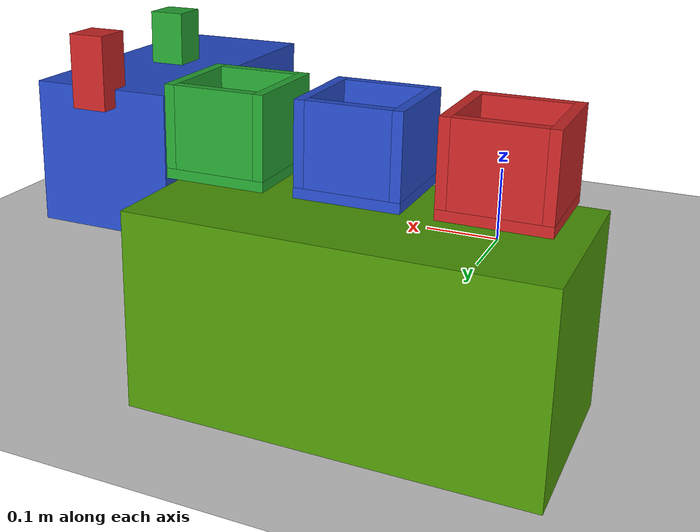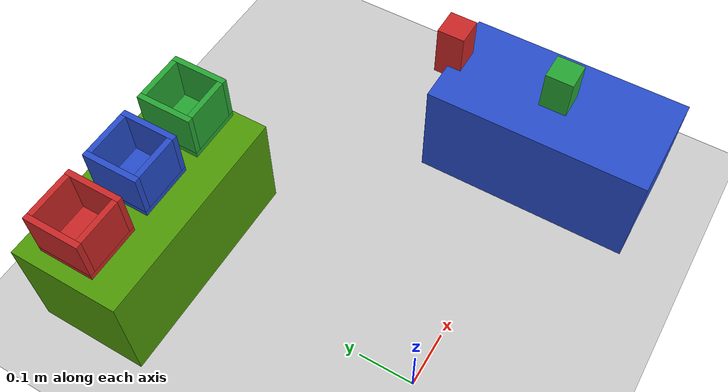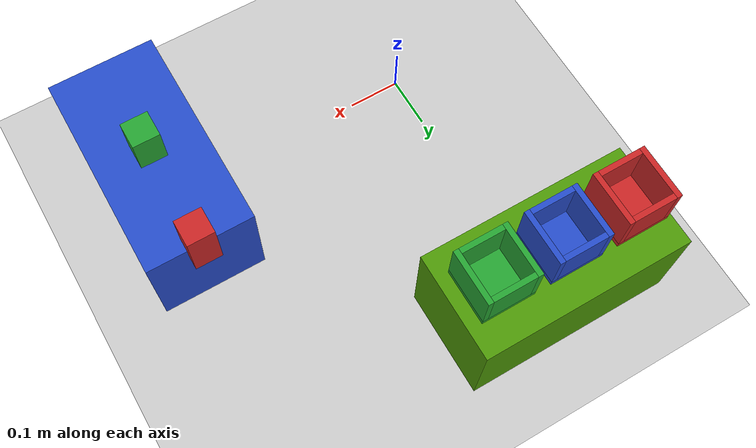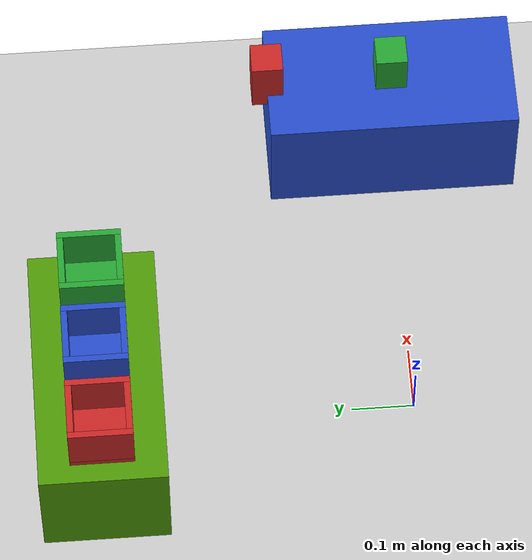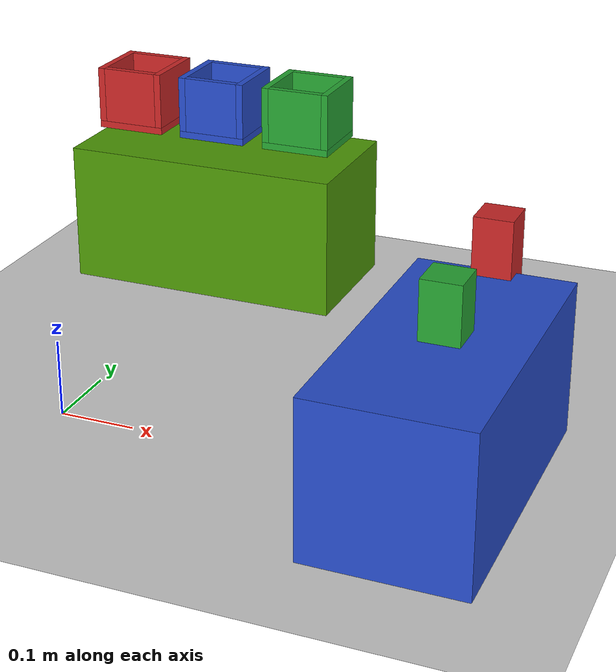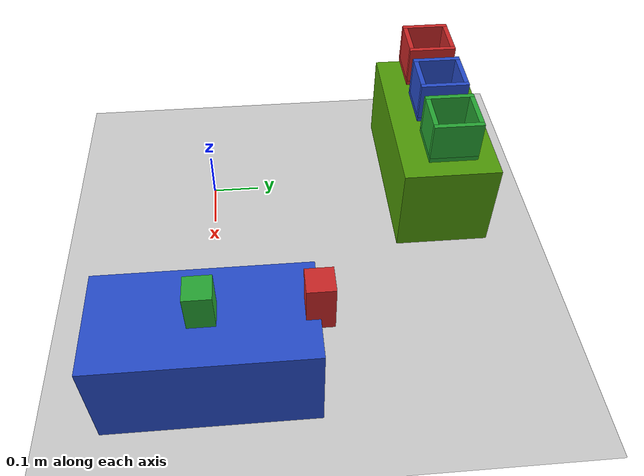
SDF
<sdf version="1.7">
 <world name="default">
  <light name="sun" type="directional">
   <pose>0 0 10 0 -0 0</pose>
   <diffuse>0.8 0.8 0.8 1</diffuse>
   <specular>0.2 0.2 0.2 1</specular>
   <attenuation>
    <range>1000</range>
    <constant>0.9</constant>
    <linear>0.01</linear>
    <quadratic>0.001</quadratic>
   </attenuation>
   <direction>-0.5 0.1 -0.9</direction>
   <spot><inner_angle>0</inner_angle><outer_angle>0</outer_angle><falloff>0</falloff></spot>
  </light>
  <model name="ground_plane">
   <static>1</static>
   <link name="link">
    <collision name="collision">
     <geometry><plane><normal>0 0 1</normal><size>100 100</size></plane></geometry>
     <surface>
      <contact><collide_bitmask>65535</collide_bitmask></contact>
      <friction><ode><mu>100</mu><mu2>50</mu2></ode></friction>
     </surface>
    </collision>
    <visual name="visual">
     <cast_shadows>0</cast_shadows>
     <geometry><plane><normal>0 0 1</normal><size>100 100</size></plane></geometry>
     <material>
      <script><uri>file://media/materials/scripts/gazebo.material</uri><name>Gazebo/Grey</name></script>
     </material>
    </visual>
    <self_collide>1</self_collide>
   </link>
  </model>
  <gravity>0 0 -9.8</gravity>
  <magnetic_field>6e-06 2.3e-05 -4.2e-05</magnetic_field>
  <atmosphere type="adiabatic"/>
  <physics type="ode">
   <max_step_size>0.001</max_step_size>
   <real_time_factor>1</real_time_factor>
   <real_time_update_rate>1000</real_time_update_rate>
  </physics>
  <scene><ambient>0.4 0.4 0.4 1</ambient><background>0.7 0.7 0.7 1</background><shadows>1</shadows></scene>
  <spherical_coordinates>
   <surface_model>EARTH_WGS84</surface_model>
   <latitude_deg>0</latitude_deg>
   <longitude_deg>0</longitude_deg>
   <elevation>0</elevation>
   <heading_deg>0</heading_deg>
  </spherical_coordinates>
  <model name="table">
   <link name="link_2">
    <inertial>
     <mass>1</mass>
     <inertia>
      <ixx>0.166667</ixx>
      <ixy>0</ixy>
      <ixz>0</ixz>
      <iyy>0.166667</iyy>
      <iyz>0</iyz>
      <izz>0.166667</izz>
     </inertia>
    </inertial>
    <self_collide>1</self_collide>
    <visual name="visual">
     <geometry><box><size>0.2 0.4 0.2</size></box></geometry>
     <material>
      <lighting>1</lighting>
      <script><uri>file://media/materials/scripts/gazebo.material</uri><name>Gazebo/Blue</name></script>
      <shader type="pixel"><normal_map>__default__</normal_map></shader>
      <ambient>0.306 0.604 0.024 1</ambient>
      <diffuse>0.7 0.7 0.7 1</diffuse>
      <specular>0.01 0.01 0.01 1</specular>
      <emissive>0 0 0 1</emissive>
     </material>
    </visual>
    <collision name="collision">
     <geometry><box><size>0.2 0.4 0.2</size></box></geometry>
     <surface>
      <friction>
       <ode><mu>1</mu><mu2>1</mu2><fdir1>0 0 0</fdir1><slip1>0</slip1><slip2>0</slip2></ode>
       <torsional>
        <coefficient>1</coefficient>
        <patch_radius>0</patch_radius>
        <surface_radius>0</surface_radius>
        <use_patch_radius>1</use_patch_radius>
        <ode><slip>0</slip></ode>
       </torsional>
      </friction>
      <bounce><restitution_coefficient>0</restitution_coefficient><threshold>1e+06</threshold></bounce>
      <contact>
       <collide_without_contact>0</collide_without_contact>
       <collide_without_contact_bitmask>1</collide_without_contact_bitmask>
       <collide_bitmask>1</collide_bitmask>
       <ode>
        <soft_cfm>0</soft_cfm>
        <soft_erp>0.2</soft_erp>
        <kp>1e+13</kp>
        <kd>1</kd>
        <max_vel>0.01</max_vel>
        <min_depth>0</min_depth>
       </ode>
       <bullet>
        <split_impulse>1</split_impulse>
        <split_impulse_penetration_threshold>-0.01</split_impulse_penetration_threshold>
        <soft_cfm>0</soft_cfm>
        <soft_erp>0.2</soft_erp>
        <kp>1e+13</kp>
        <kd>1</kd>
       </bullet>
      </contact>
     </surface>
    </collision>
   </link>
   <static>0</static>
   <pose>0.5 0 0.1 0 -0 0</pose>
  </model>
  <model name="red block">
   <link name="link_0">
    <inertial>
     <mass>0.1</mass>
     <inertia>
      <ixx>0.00416667</ixx>
      <ixy>0</ixy>
      <ixz>0</ixz>
      <iyy>0.00416667</iyy>
      <iyz>0</iyz>
      <izz>0.00416667</izz>
     </inertia>
    </inertial>
    <self_collide>1</self_collide>
    <visual name="visual">
     <geometry><box><size>0.05 0.05 0.1</size></box></geometry>
     <material>
      <lighting>1</lighting>
      <script><uri>file://media/materials/scripts/gazebo.material</uri><name>Gazebo/Red</name></script>
      <shader type="pixel"><normal_map>__default__</normal_map></shader>
      <ambient>1 0 0 1</ambient>
      <diffuse>0.7 0.7 0.7 1</diffuse>
      <specular>0.01 0.01 0.01 1</specular>
      <emissive>0 0 0 1</emissive>
     </material>
    </visual>
    <collision name="collision">
     <geometry><box><size>0.05 0.05 0.1</size></box></geometry>
     <surface>
      <friction>
       <ode><mu>100</mu><mu2>100</mu2><fdir1>0 0 0</fdir1><slip1>0</slip1><slip2>0</slip2></ode>
       <torsional>
        <coefficient>1</coefficient>
        <patch_radius>0</patch_radius>
        <surface_radius>0</surface_radius>
        <use_patch_radius>1</use_patch_radius>
        <ode><slip>0</slip></ode>
       </torsional>
      </friction>
      <bounce><restitution_coefficient>0</restitution_coefficient><threshold>1e+06</threshold></bounce>
      <contact><ode><soft_cfm>1e-6</soft_cfm><soft_erp>0.2</soft_erp><kp>1e6</kp><kd>1.0</kd></ode></contact>
     </surface>
    </collision>
   </link>
   <static>0</static>
   <pose>0.5 0.2 0.2251 0 -0 0</pose>
  </model>
  <model name="green block">
   <link name="link_0">
    <inertial>
     <mass>0.1</mass>
     <inertia>
      <ixx>0.00416667</ixx>
      <ixy>0</ixy>
      <ixz>0</ixz>
      <iyy>0.00416667</iyy>
      <iyz>0</iyz>
      <izz>0.00416667</izz>
     </inertia>
    </inertial>
    <self_collide>1</self_collide>
    <visual name="visual">
     <geometry><box><size>0.05 0.05 0.1</size></box></geometry>
     <material>
      <lighting>1</lighting>
      <script><uri>file://media/materials/scripts/gazebo.material</uri><name>Gazebo/Green</name></script>
      <shader type="pixel"><normal_map>__default__</normal_map></shader>
      <ambient>0 1 0 1</ambient>
      <diffuse>0 1 0 1</diffuse>
      <specular>0.01 0.01 0.01 1</specular>
      <emissive>0 0 0 1</emissive>
     </material>
    </visual>
    <collision name="collision">
     <geometry><box><size>0.05 0.05 0.1</size></box></geometry>
     <surface>
      <friction>
       <ode><mu>100</mu><mu2>100</mu2><fdir1>0 0 0</fdir1><slip1>0</slip1><slip2>0</slip2></ode>
       <torsional>
        <coefficient>1</coefficient>
        <patch_radius>0</patch_radius>
        <surface_radius>0</surface_radius>
        <use_patch_radius>1</use_patch_radius>
        <ode><slip>0</slip></ode>
       </torsional>
      </friction>
      <bounce><restitution_coefficient>0</restitution_coefficient><threshold>1e+06</threshold></bounce>
      <contact><ode><soft_cfm>1e-6</soft_cfm><soft_erp>0.2</soft_erp><kp>1e6</kp><kd>1.0</kd></ode></contact>
     </surface>
    </collision>
   </link>
   <static>0</static>
   <pose>0.5 0 0.2251 0 -0 0</pose>
  </model>
  <model name="blue block">
   <link name="link_0">
    <inertial>
     <mass>0.1</mass>
     <inertia>
      <ixx>0.00416667</ixx>
      <ixy>0</ixy>
      <ixz>0</ixz>
      <iyy>0.00416667</iyy>
      <iyz>0</iyz>
      <izz>0.00416667</izz>
     </inertia>
    </inertial>
    <self_collide>1</self_collide>
    <visual name="visual">
     <geometry><box><size>0.05 0.05 0.1</size></box></geometry>
     <material>
      <lighting>1</lighting>
      <script><uri>file://media/materials/scripts/gazebo.material</uri><name>Gazebo/Green</name></script>
      <shader type="pixel"><normal_map>__default__</normal_map></shader>
      <ambient>0 0 1 1</ambient>
      <diffuse>0 0 1 0.7</diffuse>
      <specular>0.01 0.01 0.01 1</specular>
      <emissive>0 0 0 1</emissive>
     </material>
    </visual>
    <collision name="collision">
     <geometry><box><size>0.05 0.05 0.1</size></box></geometry>
     <surface>
      <friction>
       <ode><mu>100</mu><mu2>100</mu2><fdir1>0 0 0</fdir1><slip1>0</slip1><slip2>0</slip2></ode>
       <torsional>
        <coefficient>1</coefficient>
        <patch_radius>0</patch_radius>
        <surface_radius>0</surface_radius>
        <use_patch_radius>1</use_patch_radius>
        <ode><slip>0</slip></ode>
       </torsional>
      </friction>
      <bounce><restitution_coefficient>0</restitution_coefficient><threshold>1e+06</threshold></bounce>
      <contact><ode><soft_cfm>1e-6</soft_cfm><soft_erp>0.2</soft_erp><kp>1e6</kp><kd>1.0</kd></ode></contact>
     </surface>
    </collision>
   </link>
   <static>0</static>
   <pose>0.5 0.2 0.2251 0 -0 0</pose>
  </model>
  <model name="table_0">
   <link name="link_2">
    <inertial>
     <mass>1</mass>
     <inertia>
      <ixx>0.166667</ixx>
      <ixy>0</ixy>
      <ixz>0</ixz>
      <iyy>0.166667</iyy>
      <iyz>0</iyz>
      <izz>0.166667</izz>
     </inertia>
    </inertial>
    <self_collide>1</self_collide>
    <visual name="visual">
     <geometry><box><size>0.2 0.4 0.2</size></box></geometry>
     <material>
      <lighting>1</lighting>
      <script><uri>file://media/materials/scripts/gazebo.material</uri><name>Gazebo/Grey</name></script>
      <shader type="pixel"><normal_map>__default__</normal_map></shader>
      <ambient>0.306 0.604 0.024 1</ambient>
      <diffuse>0.7 0.7 0.7 1</diffuse>
      <specular>0.01 0.01 0.01 1</specular>
      <emissive>0 0 0 1</emissive>
     </material>
    </visual>
    <collision name="collision">
     <geometry><box><size>0.2 0.4 0.2</size></box></geometry>
     <surface>
      <friction>
       <ode><mu>1</mu><mu2>1</mu2><fdir1>0 0 0</fdir1><slip1>0</slip1><slip2>0</slip2></ode>
       <torsional>
        <coefficient>1</coefficient>
        <patch_radius>0</patch_radius>
        <surface_radius>0</surface_radius>
        <use_patch_radius>1</use_patch_radius>
        <ode><slip>0</slip></ode>
       </torsional>
      </friction>
      <bounce><restitution_coefficient>0</restitution_coefficient><threshold>1e+06</threshold></bounce>
      <contact>
       <collide_without_contact>0</collide_without_contact>
       <collide_without_contact_bitmask>1</collide_without_contact_bitmask>
       <collide_bitmask>1</collide_bitmask>
       <ode>
        <soft_cfm>0</soft_cfm>
        <soft_erp>0.2</soft_erp>
        <kp>1e+13</kp>
        <kd>1</kd>
        <max_vel>0.01</max_vel>
        <min_depth>0</min_depth>
       </ode>
       <bullet>
        <split_impulse>1</split_impulse>
        <split_impulse_penetration_threshold>-0.01</split_impulse_penetration_threshold>
        <soft_cfm>0</soft_cfm>
        <soft_erp>0.2</soft_erp>
        <kp>1e+13</kp>
        <kd>1</kd>
       </bullet>
      </contact>
     </surface>
    </collision>
   </link>
   <static>0</static>
   <pose>0 0.5 0.1 0 -0 1.57</pose>
  </model>
  <model name="bin_blue">
   <pose>0 0.5 0.2251 0 -0 0</pose>
   <static>false</static>
   <link name="link_0">
    <visual name="visual">
     <geometry><box><size>0.1 0.1 0.01</size></box></geometry>
     <material>
      <script><uri>file://media/materials/scripts/gazebo.material</uri><name>Gazebo/Blue</name></script>
     </material>
    </visual>
    <collision name="collision"><geometry><box><size>0.1 0.1 0.01</size></box></geometry></collision>
   </link>
   <link name="link_1">
    <pose>-0.045 0 0.045 0 0 0</pose>
    <visual name="visual">
     <geometry><box><size>0.01 0.1 0.08</size></box></geometry>
     <material>
      <script><uri>file://media/materials/scripts/gazebo.material</uri><name>Gazebo/Blue</name></script>
     </material>
    </visual>
    <collision name="collision"><geometry><box><size>0.01 0.1 0.08</size></box></geometry></collision>
   </link>
   <link name="link_1_clone">
    <pose>0.045 0 0.045 0 0 0</pose>
    <visual name="visual">
     <geometry><box><size>0.01 0.1 0.08</size></box></geometry>
     <material>
      <script><uri>file://media/materials/scripts/gazebo.material</uri><name>Gazebo/Blue</name></script>
     </material>
    </visual>
    <collision name="collision"><geometry><box><size>0.01 0.1 0.08</size></box></geometry></collision>
   </link>
   <link name="link_2">
    <pose>0 -0.045 0.045 0 0 0</pose>
    <visual name="visual">
     <geometry><box><size>0.08 0.01 0.08</size></box></geometry>
     <material>
      <script><uri>file://media/materials/scripts/gazebo.material</uri><name>Gazebo/Blue</name></script>
     </material>
    </visual>
    <collision name="collision"><geometry><box><size>0.08 0.01 0.08</size></box></geometry></collision>
   </link>
   <link name="link_2_clone">
    <pose>0 0.045 0.045 0 0 0</pose>
    <visual name="visual">
     <geometry><box><size>0.08 0.01 0.08</size></box></geometry>
     <material>
      <script><uri>file://media/materials/scripts/gazebo.material</uri><name>Gazebo/Blue</name></script>
     </material>
    </visual>
    <collision name="collision"><geometry><box><size>0.08 0.01 0.08</size></box></geometry></collision>
   </link>
  </model>
  <model name="bin_green">
   <pose>0.13 0.5 0.2251 0 -0 0</pose>
   <static>false</static>
   <link name="link_0">
    <visual name="visual">
     <geometry><box><size>0.1 0.1 0.01</size></box></geometry>
     <material>
      <script><uri>file://media/materials/scripts/gazebo.material</uri><name>Gazebo/Green</name></script>
     </material>
    </visual>
    <collision name="collision"><geometry><box><size>0.1 0.1 0.01</size></box></geometry></collision>
   </link>
   <link name="link_1">
    <pose>-0.045 0 0.045 0 0 0</pose>
    <visual name="visual">
     <geometry><box><size>0.01 0.1 0.08</size></box></geometry>
     <material>
      <script><uri>file://media/materials/scripts/gazebo.material</uri><name>Gazebo/Green</name></script>
     </material>
    </visual>
    <collision name="collision"><geometry><box><size>0.01 0.1 0.08</size></box></geometry></collision>
   </link>
   <link name="link_1_clone">
    <pose>0.045 0 0.045 0 0 0</pose>
    <visual name="visual">
     <geometry><box><size>0.01 0.1 0.08</size></box></geometry>
     <material>
      <script><uri>file://media/materials/scripts/gazebo.material</uri><name>Gazebo/Green</name></script>
     </material>
    </visual>
    <collision name="collision"><geometry><box><size>0.01 0.1 0.08</size></box></geometry></collision>
   </link>
   <link name="link_2">
    <pose>0 -0.045 0.045 0 0 0</pose>
    <visual name="visual">
     <geometry><box><size>0.08 0.01 0.08</size></box></geometry>
     <material>
      <script><uri>file://media/materials/scripts/gazebo.material</uri><name>Gazebo/Green</name></script>
     </material>
    </visual>
    <collision name="collision"><geometry><box><size>0.08 0.01 0.08</size></box></geometry></collision>
   </link>
   <link name="link_2_clone">
    <pose>0 0.045 0.045 0 0 0</pose>
    <visual name="visual">
     <geometry><box><size>0.08 0.01 0.08</size></box></geometry>
     <material>
      <script><uri>file://media/materials/scripts/gazebo.material</uri><name>Gazebo/Green</name></script>
     </material>
    </visual>
    <collision name="collision"><geometry><box><size>0.08 0.01 0.08</size></box></geometry></collision>
   </link>
  </model>
  <model name="bin_red">
   <pose>-0.13 0.5 0.2251 0 -0 0</pose>
   <static>false</static>
   <link name="link_0">
    <visual name="visual">
     <geometry><box><size>0.1 0.1 0.01</size></box></geometry>
     <material>
      <script><uri>file://media/materials/scripts/gazebo.material</uri><name>Gazebo/Red</name></script>
     </material>
    </visual>
    <collision name="collision"><geometry><box><size>0.1 0.1 0.01</size></box></geometry></collision>
   </link>
   <link name="link_1">
    <pose>-0.045 0 0.045 0 0 0</pose>
    <visual name="visual">
     <geometry><box><size>0.01 0.1 0.08</size></box></geometry>
     <material>
      <script><uri>file://media/materials/scripts/gazebo.material</uri><name>Gazebo/Red</name></script>
     </material>
    </visual>
    <collision name="collision"><geometry><box><size>0.01 0.1 0.08</size></box></geometry></collision>
   </link>
   <link name="link_1_clone">
    <pose>0.045 0 0.045 0 0 0</pose>
    <visual name="visual">
     <geometry><box><size>0.01 0.1 0.08</size></box></geometry>
     <material>
      <script><uri>file://media/materials/scripts/gazebo.material</uri><name>Gazebo/Red</name></script>
     </material>
    </visual>
    <collision name="collision"><geometry><box><size>0.01 0.1 0.08</size></box></geometry></collision>
   </link>
   <link name="link_2">
    <pose>0 -0.045 0.045 0 0 0</pose>
    <visual name="visual">
     <geometry><box><size>0.08 0.01 0.08</size></box></geometry>
     <material>
      <script><uri>file://media/materials/scripts/gazebo.material</uri><name>Gazebo/Red</name></script>
     </material>
    </visual>
    <collision name="collision"><geometry><box><size>0.08 0.01 0.08</size></box></geometry></collision>
   </link>
   <link name="link_2_clone">
    <pose>0 0.045 0.045 0 0 0</pose>
    <visual name="visual">
     <geometry><box><size>0.08 0.01 0.08</size></box></geometry>
     <material>
      <script><uri>file://media/materials/scripts/gazebo.material</uri><name>Gazebo/Red</name></script>
     </material>
    </visual>
    <collision name="collision"><geometry><box><size>0.08 0.01 0.08</size></box></geometry></collision>
   </link>
  </model>
 </world>
</sdf>
